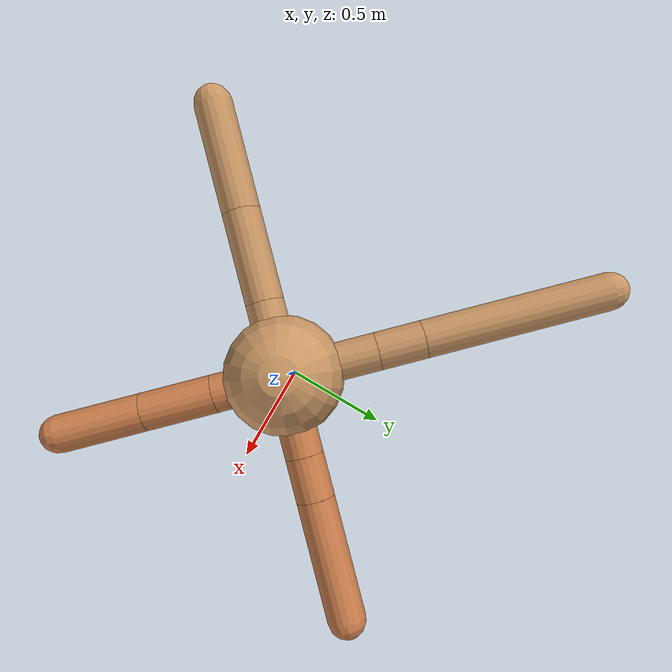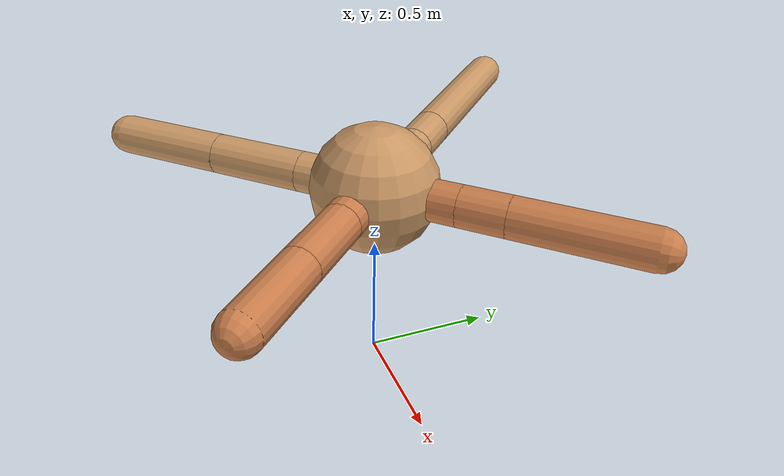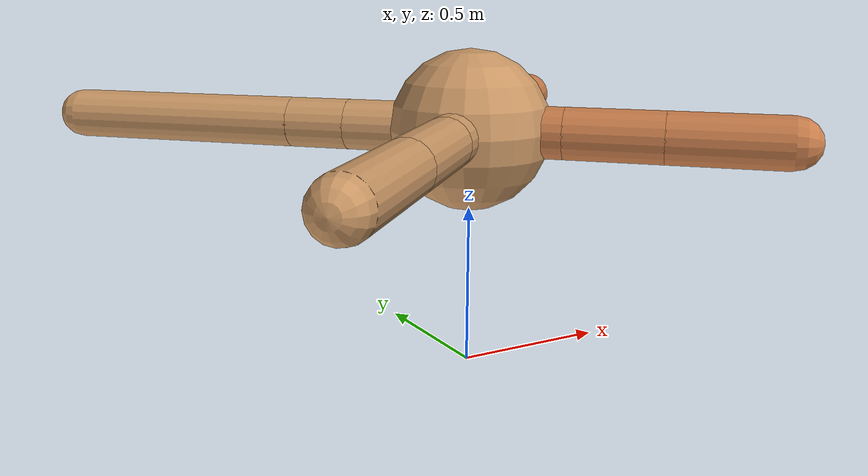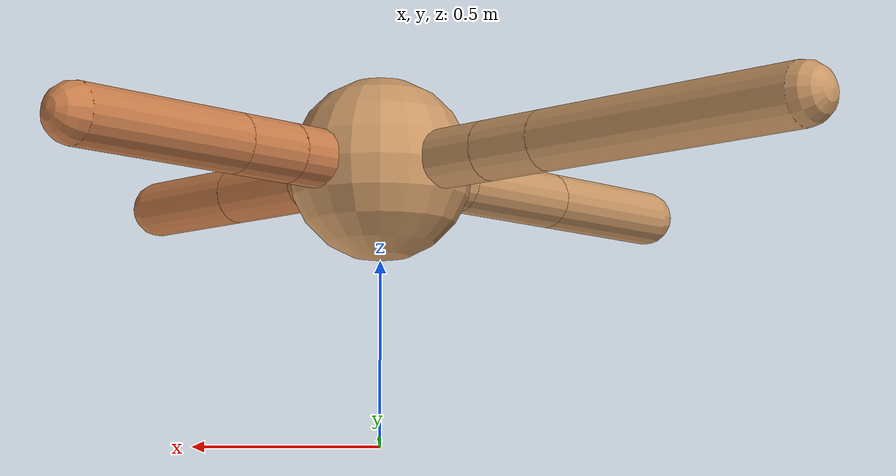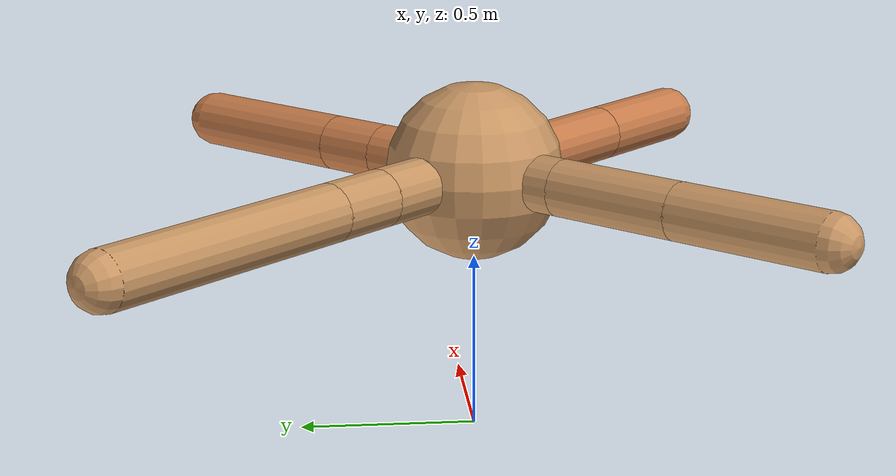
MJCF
<mujoco model="ant">
  <compiler angle="degree" coordinate="local" inertiafromgeom="true" />
  <option integrator="RK4" timestep="0.01" />
  <custom>
    <numeric data="0.0 0.0 0.55 1.0 0.0 0.0 0.0 0.0 1.0 0.0 -1.0 0.0 -1.0 0.0 1.0" name="init_qpos" />
  </custom>
  <default>
    <joint armature="1" damping="1" limited="true" />
    <geom conaffinity="0" condim="3" density="5.0" friction="1.5 0.1 0.1" margin="0.01" rgba="0.8 0.6 0.4 1" />
  </default>
  <worldbody>
    <body name="torso" pos="0 0 0.75">
      <geom name="torso_geom" pos="0 0 0" size="0.25" type="sphere" />

      <body name="front_left_leg" pos="0 0 0">
        <geom fromto="0.0 0.0 0.0 0.23783157921372375 0.23783157921372375 0.0" name="aux_1_geom" size="0.08" type="capsule" rgba=".8 .5 .3 1" />
        <body name="aux_1" pos="0.23783157921372375 0.23783157921372375 0.0">
          <joint axis="0 0 1" name="hip_1" pos="0.0 0.0 0.0" range="-40 40" type="hinge" />
          <geom fromto="0.0 0.0 0.0 0.12967136530350606 0.12967136530350606 0.0" name="left_leg_geom" size="0.08" type="capsule" rgba=".8 .5 .3 1" />
          <body pos="0.12967136530350606 0.12967136530350606 0.0" name="front_left_foot">
            <joint axis="-1 1 0" name="ankle_1" pos="0.0 0.0 0.0" range="30 100" type="hinge" />
            <geom fromto="0.0 0.0 0.0 0.35877195478181384 0.35877195478181384 0.0" name="left_ankle_geom" size="0.08" type="capsule" rgba=".8 .5 .3 1" />
          </body>
        </body>
      </body>
      <body name="front_right_leg" pos="0 0 0">
        <geom fromto="0.0 0.0 0.0 -0.27945186535233313 0.27945186535233313 0.0" name="aux_2_geom" size="0.08" type="capsule" />
        <body name="aux_2" pos="-0.27945186535233313 0.27945186535233313 0.0">
          <joint axis="0 0 1" name="hip_2" pos="0.0 0.0 0.0" range="-40 40" type="hinge" />
          <geom fromto="0.0 0.0 0.0 -0.13714546805370514 0.13714546805370514 0.0" name="right_leg_geom" size="0.08" type="capsule" />
          <body pos="-0.13714546805370514 0.13714546805370514 0.0" name="front_right_foot">
            <joint axis="1 1 0" name="ankle_2" pos="0.0 0.0 0.0" range="-100 -30" type="hinge" />
            <geom fromto="0.0 0.0 0.0 -0.5528698274379079 0.5528698274379079 0.0" name="right_ankle_geom" size="0.08" type="capsule" />
          </body>
        </body>
      </body>
      <body name="left_back_leg" pos="0 0 0">
        <geom fromto="0.0 0.0 0.0 -0.21832183227379068 -0.21832183227379068 0.0" name="aux_3_geom" size="0.08" type="capsule" />
        <body name="aux_3" pos="-0.21832183227379068 -0.21832183227379068 0.0">
          <joint axis="0 0 1" name="hip_3" pos="0.0 0.0 0.0" range="-40 40" type="hinge" />
          <geom fromto="0.0 0.0 0.0 -0.2692475575611478 -0.2692475575611478 0.0" name="back_leg_geom" size="0.08" type="capsule" />
          <body pos="-0.2692475575611478 -0.2692475575611478 0.0" name="left_back_foot">
            <joint axis="-1 1 0" name="ankle_3" pos="0.0 0.0 0.0" range="-100 -30" type="hinge" />
            <geom fromto="0.0 0.0 0.0 -0.3225317759592936 -0.3225317759592936 0.0" name="third_ankle_geom" size="0.08" type="capsule" />
          </body>
        </body>
      </body>
      <body name="right_back_leg" pos="0 0 0">
        <geom fromto="0.0 0.0 0.0 0.2063603722323634 -0.2063603722323634 0.0" name="aux_4_geom" size="0.08" type="capsule" rgba=".8 .5 .3 1" />
        <body name="aux_4" pos="0.2063603722323634 -0.2063603722323634 0.0">
          <joint axis="0 0 1" name="hip_4" pos="0.0 0.0 0.0" range="-40 40" type="hinge" />
          <geom fromto="0.0 0.0 0.0 0.20944575854790096 -0.20944575854790096 0.0" name="rightback_leg_geom" size="0.08" type="capsule" rgba=".8 .5 .3 1" />
          <body pos="0.20944575854790096 -0.20944575854790096 0.0" name="right_back_foot">
            <joint axis="1 1 0" name="ankle_4" pos="0.0 0.0 0.0" range="30 100" type="hinge" />
            <geom fromto="0.0 0.0 0.0 0.2508697443432373 -0.2508697443432373 0.0" name="fourth_ankle_geom" size="0.08" type="capsule" rgba=".8 .5 .3 1" />
          </body>
        </body>
      </body>
    </body>
  </worldbody>
  <actuator>
    <motor ctrllimited="true" ctrlrange="-1.0 1.0" joint="hip_4" gear="150" />
    <motor ctrllimited="true" ctrlrange="-1.0 1.0" joint="ankle_4" gear="150" />
    <motor ctrllimited="true" ctrlrange="-1.0 1.0" joint="hip_1" gear="150" />
    <motor ctrllimited="true" ctrlrange="-1.0 1.0" joint="ankle_1" gear="150" />
    <motor ctrllimited="true" ctrlrange="-1.0 1.0" joint="hip_2" gear="150" />
    <motor ctrllimited="true" ctrlrange="-1.0 1.0" joint="ankle_2" gear="150" />
    <motor ctrllimited="true" ctrlrange="-1.0 1.0" joint="hip_3" gear="150" />
    <motor ctrllimited="true" ctrlrange="-1.0 1.0" joint="ankle_3" gear="150" />
  </actuator>
</mujoco>
